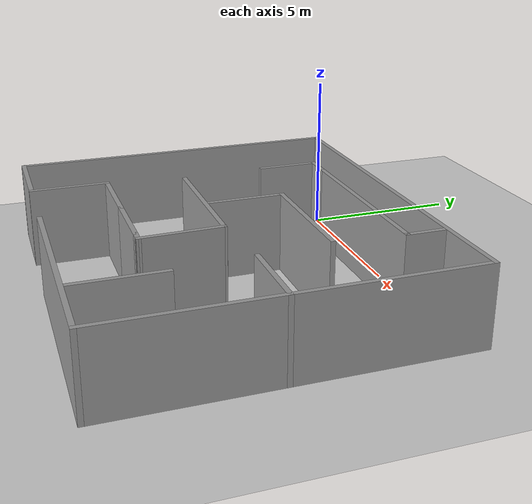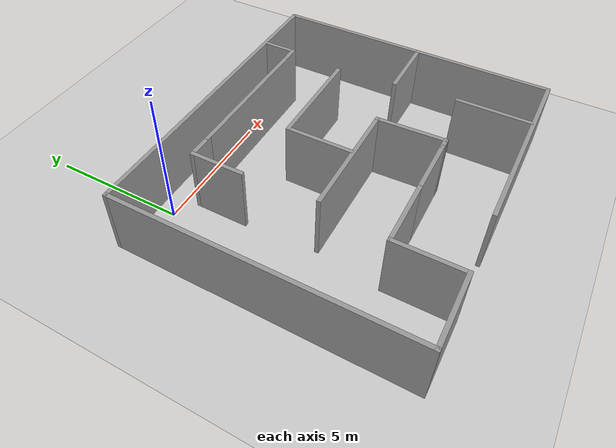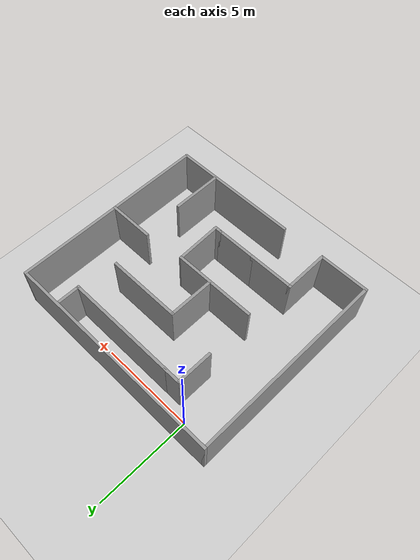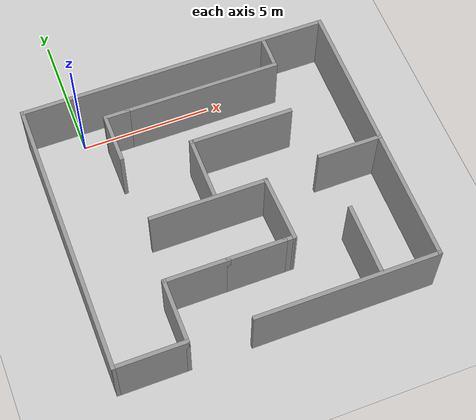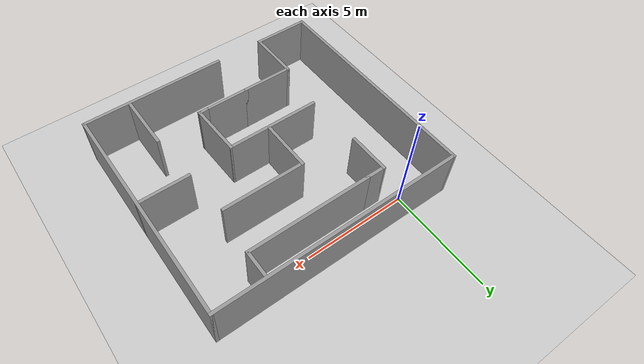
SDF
<sdf version="1.6">
 <world name="default">
  <light name="sun" type="directional">
   <pose>0 0 10 0 -0 0</pose>
   <diffuse>0.8 0.8 0.8 1</diffuse>
   <specular>0.1 0.1 0.1 1</specular>
   <attenuation>
    <range>1000</range>
    <constant>0.9</constant>
    <linear>0.01</linear>
    <quadratic>0.001</quadratic>
   </attenuation>
   <direction>-0.5 0.5 -1</direction>
  </light>
  <model name="ground_plane">
   <static>1</static>
   <link name="link">
    <collision name="collision">
     <geometry><plane><normal>0 0 1</normal><size>100 100</size></plane></geometry>
     <surface><friction><ode><mu>100</mu><mu2>50</mu2></ode></friction></surface>
    </collision>
    <visual name="visual">
     <cast_shadows>0</cast_shadows>
     <geometry><plane><normal>0 0 1</normal><size>100 100</size></plane></geometry>
     <material>
      <script><uri>file://media/materials/scripts/gazebo.material</uri><name>Gazebo/Grey</name></script>
     </material>
    </visual>
   </link>
  </model>
  <gravity>0 0 -9.8</gravity>
  <magnetic_field>6e-06 2.3e-05 -4.2e-05</magnetic_field>
  <atmosphere type="adiabatic"/>
  <physics name="default_physics" default="0" type="ode">
   <max_step_size>0.001</max_step_size>
   <real_time_factor>1</real_time_factor>
   <real_time_update_rate>1000</real_time_update_rate>
  </physics>
  <scene><ambient>0.4 0.4 0.4 1</ambient><background>0.7 0.7 0.7 1</background><shadows>1</shadows></scene>
  <spherical_coordinates>
   <surface_model>EARTH_WGS84</surface_model>
   <latitude_deg>0</latitude_deg>
   <longitude_deg>0</longitude_deg>
   <elevation>0</elevation>
   <heading_deg>0</heading_deg>
  </spherical_coordinates>
  <model name="mazeWorld">
   <pose>3.98608 -4.59007 0 0 -0 0</pose>
   <link name="Wall_10">
    <collision name="Wall_10_Collision">
     <geometry><box><size>2.75 0.15 2.5</size></box></geometry>
     <pose>0 0 1.25 0 -0 0</pose>
    </collision>
    <visual name="Wall_10_Visual">
     <pose>0 0 1.25 0 -0 0</pose>
     <geometry><box><size>2.75 0.15 2.5</size></box></geometry>
     <material>
      <script><uri>file://media/materials/scripts/gazebo.material</uri><name>Gazebo/Grey</name></script>
      <ambient>1 1 1 1</ambient>
     </material>
    </visual>
    <pose>-4.62528 -5.3 0 0 -0 0</pose>
   </link>
   <link name="Wall_12">
    <collision name="Wall_12_Collision">
     <geometry><box><size>7 0.15 2.5</size></box></geometry>
     <pose>0 0 1.25 0 -0 0</pose>
    </collision>
    <visual name="Wall_12_Visual">
     <pose>0 0 1.25 0 -0 0</pose>
     <geometry><box><size>7 0.15 2.5</size></box></geometry>
     <material>
      <script><uri>file://media/materials/scripts/gazebo.material</uri><name>Gazebo/Grey</name></script>
      <ambient>1 1 1 1</ambient>
     </material>
    </visual>
    <pose>2.49972 -5.3 0 0 -0 3.14159</pose>
   </link>
   <link name="Wall_14">
    <collision name="Wall_14_Collision">
     <geometry><box><size>2.5 0.15 2.5</size></box></geometry>
     <pose>0 0 1.25 0 -0 0</pose>
    </collision>
    <visual name="Wall_14_Visual">
     <pose>0 0 1.25 0 -0 0</pose>
     <geometry><box><size>2.5 0.15 2.5</size></box></geometry>
     <material>
      <script><uri>file://media/materials/scripts/gazebo.material</uri><name>Gazebo/Grey</name></script>
      <ambient>1 1 1 1</ambient>
     </material>
    </visual>
    <pose>-3.32528 -4.125 0 0 -0 1.5708</pose>
   </link>
   <link name="Wall_15">
    <collision name="Wall_15_Collision">
     <geometry><box><size>2.5 0.15 2.5</size></box></geometry>
     <pose>0 0 1.25 0 -0 0</pose>
    </collision>
    <visual name="Wall_15_Visual">
     <pose>0 0 1.25 0 -0 0</pose>
     <geometry><box><size>2.5 0.15 2.5</size></box></geometry>
     <material>
      <script><uri>file://media/materials/scripts/gazebo.material</uri><name>Gazebo/Grey</name></script>
      <ambient>1 1 1 1</ambient>
     </material>
    </visual>
    <pose>-2.15028 -2.95 0 0 -0 0</pose>
   </link>
   <link name="Wall_18">
    <collision name="Wall_18_Collision">
     <geometry><box><size>4.5 0.15 2.5</size></box></geometry>
     <pose>0 0 1.25 0 -0 0</pose>
    </collision>
    <visual name="Wall_18_Visual">
     <pose>0 0 1.25 0 -0 0</pose>
     <geometry><box><size>4.5 0.15 2.5</size></box></geometry>
     <material>
      <script><uri>file://media/materials/scripts/gazebo.material</uri><name>Gazebo/Grey</name></script>
      <ambient>1 1 1 1</ambient>
     </material>
    </visual>
    <pose>-0.783322 -0.501689 0 0 -0 3.14159</pose>
   </link>
   <link name="Wall_20">
    <collision name="Wall_20_Collision">
     <geometry><box><size>2.75 0.15 2.5</size></box></geometry>
     <pose>0 0 1.25 0 -0 0</pose>
    </collision>
    <visual name="Wall_20_Visual">
     <pose>0 0 1.25 0 -0 0</pose>
     <geometry><box><size>2.75 0.15 2.5</size></box></geometry>
     <material>
      <script><uri>file://media/materials/scripts/gazebo.material</uri><name>Gazebo/Grey</name></script>
      <ambient>1 1 1 1</ambient>
     </material>
    </visual>
    <pose>3.751 -3.9129 0 0 -0 1.5708</pose>
   </link>
   <link name="Wall_22">
    <collision name="Wall_22_Collision">
     <geometry><box><size>2.5 0.15 2.5</size></box></geometry>
     <pose>0 0 1.25 0 -0 0</pose>
    </collision>
    <visual name="Wall_22_Visual">
     <pose>0 0 1.25 0 -0 0</pose>
     <geometry><box><size>2.5 0.15 2.5</size></box></geometry>
     <material>
      <script><uri>file://media/materials/scripts/gazebo.material</uri><name>Gazebo/Grey</name></script>
      <ambient>1 1 1 1</ambient>
     </material>
    </visual>
    <pose>4.75028 -0.262956 0 0 -0 3.14159</pose>
   </link>
   <link name="Wall_29">
    <collision name="Wall_29_Collision">
     <geometry><box><size>1.25 0.15 2.5</size></box></geometry>
     <pose>0 0 1.25 0 -0 0</pose>
    </collision>
    <visual name="Wall_29_Visual">
     <pose>0 0 1.25 0 -0 0</pose>
     <geometry><box><size>1.25 0.15 2.5</size></box></geometry>
     <material>
      <script><uri>file://media/materials/scripts/gazebo.material</uri><name>Gazebo/Grey</name></script>
      <ambient>1 1 1 1</ambient>
     </material>
    </visual>
    <pose>3.56596 4.59961 0 0 0 -1.5708</pose>
   </link>
   <link name="Wall_30">
    <collision name="Wall_30_Collision">
     <geometry><box><size>6 0.15 2.5</size></box></geometry>
     <pose>0 0 1.25 0 -0 0</pose>
    </collision>
    <visual name="Wall_30_Visual">
     <pose>0 0 1.25 0 -0 0</pose>
     <geometry><box><size>6 0.15 2.5</size></box></geometry>
     <material>
      <script><uri>file://media/materials/scripts/gazebo.material</uri><name>Gazebo/Grey</name></script>
      <ambient>1 1 1 1</ambient>
     </material>
    </visual>
    <pose>0.640955 4.04961 0 0 -0 3.14159</pose>
   </link>
   <link name="Wall_32">
    <collision name="Wall_32_Collision">
     <geometry><box><size>1 0.15 2.5</size></box></geometry>
     <pose>0 0 1.25 0 -0 0</pose>
    </collision>
    <visual name="Wall_32_Visual">
     <pose>0 0 1.25 0 -0 0</pose>
     <geometry><box><size>1 0.15 2.5</size></box></geometry>
     <material>
      <script><uri>file://media/materials/scripts/gazebo.material</uri><name>Gazebo/Grey</name></script>
      <ambient>1 1 1 1</ambient>
     </material>
    </visual>
    <pose>-2.70905 4.04961 0 0 -0 3.14159</pose>
   </link>
   <link name="Wall_33">
    <collision name="Wall_33_Collision">
     <geometry><box><size>2 0.15 2.5</size></box></geometry>
     <pose>0 0 1.25 0 -0 0</pose>
    </collision>
    <visual name="Wall_33_Visual">
     <pose>0 0 1.25 0 -0 0</pose>
     <geometry><box><size>2 0.15 2.5</size></box></geometry>
     <material>
      <script><uri>file://media/materials/scripts/gazebo.material</uri><name>Gazebo/Grey</name></script>
      <ambient>1 1 1 1</ambient>
     </material>
    </visual>
    <pose>-3.13404 3.12461 0 0 0 -1.5708</pose>
   </link>
   <link name="Wall_36">
    <collision name="Wall_36_Collision">
     <geometry><box><size>2.25 0.15 2.5</size></box></geometry>
     <pose>0 0 1.25 0 -0 0</pose>
    </collision>
    <visual name="Wall_36_Visual">
     <pose>0 0 1.25 0 -0 0</pose>
     <geometry><box><size>2.25 0.15 2.5</size></box></geometry>
     <material>
      <script><uri>file://media/materials/scripts/gazebo.material</uri><name>Gazebo/Grey</name></script>
      <ambient>1 1 1 1</ambient>
     </material>
    </visual>
    <pose>0.074724 -2.95 0 0 -0 0</pose>
   </link>
   <link name="Wall_38">
    <collision name="Wall_38_Collision">
     <geometry><box><size>0.5 0.15 2.5</size></box></geometry>
     <pose>0 0 1.25 0 -0 0</pose>
    </collision>
    <visual name="Wall_38_Visual">
     <pose>0 0 1.25 0 -0 0</pose>
     <geometry><box><size>0.5 0.15 2.5</size></box></geometry>
     <material>
      <script><uri>file://media/materials/scripts/gazebo.material</uri><name>Gazebo/Grey</name></script>
      <ambient>1 1 1 1</ambient>
     </material>
    </visual>
    <pose>1.29972 -2.95 0 0 -0 0</pose>
   </link>
   <link name="Wall_40">
    <collision name="Wall_40_Collision">
     <geometry><box><size>2.59972 0.15 2.5</size></box></geometry>
     <pose>0 0 1.25 0 -0 0</pose>
    </collision>
    <visual name="Wall_40_Visual">
     <pose>0 0 1.25 0 -0 0</pose>
     <geometry><box><size>2.59972 0.15 2.5</size></box></geometry>
     <material>
      <script><uri>file://media/materials/scripts/gazebo.material</uri><name>Gazebo/Grey</name></script>
      <ambient>1 1 1 1</ambient>
     </material>
    </visual>
    <pose>1.4332 -1.72584 0 0 -0 1.6047</pose>
   </link>
   <link name="Wall_42">
    <collision name="Wall_42_Collision">
     <geometry><box><size>2.5 0.15 2.5</size></box></geometry>
     <pose>0 0 1.25 0 -0 0</pose>
    </collision>
    <visual name="Wall_42_Visual">
     <pose>0 0 1.25 0 -0 0</pose>
     <geometry><box><size>2.5 0.15 2.5</size></box></geometry>
     <material>
      <script><uri>file://media/materials/scripts/gazebo.material</uri><name>Gazebo/Grey</name></script>
      <ambient>1 1 1 1</ambient>
     </material>
    </visual>
    <pose>-0.541888 0.765678 0 0 -0 1.5708</pose>
   </link>
   <link name="Wall_44">
    <collision name="Wall_44_Collision">
     <geometry><box><size>4 0.15 2.5</size></box></geometry>
     <pose>0 0 1.25 0 -0 0</pose>
    </collision>
    <visual name="Wall_44_Visual">
     <pose>0 0 1.25 0 -0 0</pose>
     <geometry><box><size>4 0.15 2.5</size></box></geometry>
     <material>
      <script><uri>file://media/materials/scripts/gazebo.material</uri><name>Gazebo/Grey</name></script>
      <ambient>1 1 1 1</ambient>
     </material>
    </visual>
    <pose>1.38311 1.94068 0 0 -0 0</pose>
   </link>
   <link name="Wall_6">
    <collision name="Wall_6_Collision">
     <geometry><box><size>12 0.15 2.5</size></box></geometry>
     <pose>0 0 1.25 0 -0 0</pose>
    </collision>
    <visual name="Wall_6_Visual">
     <pose>0 0 1.25 0 -0 0</pose>
     <geometry><box><size>12 0.15 2.5</size></box></geometry>
     <material>
      <script><uri>file://media/materials/scripts/gazebo.material</uri><name>Gazebo/Grey</name></script>
      <ambient>1 1 1 1</ambient>
     </material>
    </visual>
    <pose>-0.000276 5.3 0 0 -0 0</pose>
   </link>
   <link name="Wall_7">
    <collision name="Wall_7_Collision">
     <geometry><box><size>10.75 0.15 2.5</size></box></geometry>
     <pose>0 0 1.25 0 -0 0</pose>
    </collision>
    <visual name="Wall_7_Visual">
     <pose>0 0 1.25 0 -0 0</pose>
     <geometry><box><size>10.75 0.15 2.5</size></box></geometry>
     <material>
      <script><uri>file://media/materials/scripts/gazebo.material</uri><name>Gazebo/Grey</name></script>
      <ambient>1 1 1 1</ambient>
     </material>
    </visual>
    <pose>5.92472 0 0 0 0 -1.5708</pose>
   </link>
   <link name="Wall_9">
    <collision name="Wall_9_Collision">
     <geometry><box><size>10.75 0.15 2.5</size></box></geometry>
     <pose>0 0 1.25 0 -0 0</pose>
    </collision>
    <visual name="Wall_9_Visual">
     <pose>0 0 1.25 0 -0 0</pose>
     <geometry><box><size>10.75 0.15 2.5</size></box></geometry>
     <material>
      <script><uri>file://media/materials/scripts/gazebo.material</uri><name>Gazebo/Grey</name></script>
      <ambient>1 1 1 1</ambient>
     </material>
    </visual>
    <pose>-5.92528 0 0 0 0 -1.5708</pose>
   </link>
   <static>1</static>
  </model>
 </world>
</sdf>
